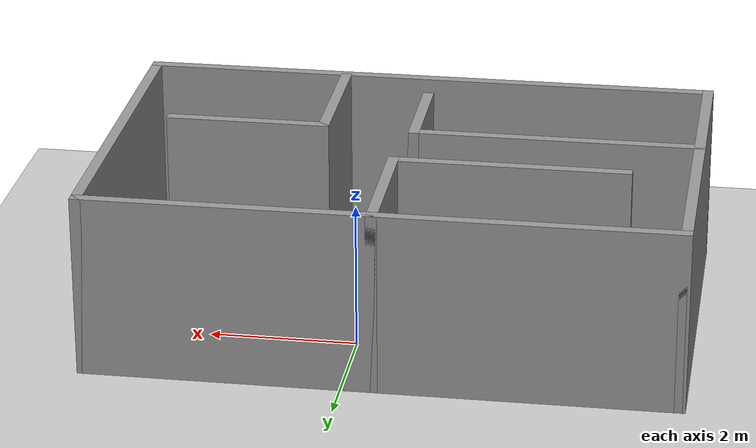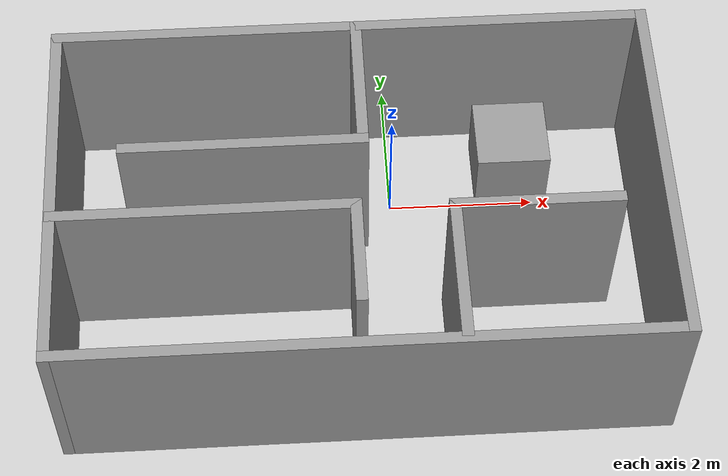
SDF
<sdf version="1.7">
 <world name="default">
  <light name="sun" type="directional">
   <pose>0 0 10 0 -0 0</pose>
   <diffuse>0.8 0.8 0.8 1</diffuse>
   <specular>0.2 0.2 0.2 1</specular>
   <attenuation>
    <range>1000</range>
    <constant>0.9</constant>
    <linear>0.01</linear>
    <quadratic>0.001</quadratic>
   </attenuation>
   <direction>-0.5 0.1 -0.9</direction>
   <spot><inner_angle>0</inner_angle><outer_angle>0</outer_angle><falloff>0</falloff></spot>
  </light>
  <model name="ground_plane">
   <static>1</static>
   <link name="link">
    <collision name="collision">
     <geometry><plane><normal>0 0 1</normal><size>100 100</size></plane></geometry>
     <surface><friction><ode><mu>100</mu><mu2>50</mu2></ode></friction></surface>
    </collision>
    <visual name="visual">
     <cast_shadows>0</cast_shadows>
     <geometry><plane><normal>0 0 1</normal><size>100 100</size></plane></geometry>
     <material>
      <script><uri>file://media/materials/scripts/gazebo.material</uri><name>Gazebo/Grey</name></script>
     </material>
    </visual>
   </link>
  </model>
  <gravity>0 0 -9.8</gravity>
  <magnetic_field>6e-06 2.3e-05 -4.2e-05</magnetic_field>
  <atmosphere type="adiabatic"/>
  <physics type="ode">
   <max_step_size>0.001</max_step_size>
   <real_time_factor>1</real_time_factor>
   <real_time_update_rate>1000</real_time_update_rate>
  </physics>
  <scene><ambient>0.4 0.4 0.4 1</ambient><background>0.7 0.7 0.7 1</background><shadows>1</shadows></scene>
  <spherical_coordinates>
   <surface_model>EARTH_WGS84</surface_model>
   <latitude_deg>0</latitude_deg>
   <longitude_deg>0</longitude_deg>
   <elevation>0</elevation>
   <heading_deg>0</heading_deg>
  </spherical_coordinates>
  <model name="room">
   <pose>-0.491127 0.063659 0 0 -0 0</pose>
   <link name="Wall_0">
    <collision name="Wall_0_Collision">
     <geometry><box><size>8 0.15 2.5</size></box></geometry>
     <pose>0 0 1.25 0 -0 0</pose>
    </collision>
    <visual name="Wall_0_Visual">
     <pose>0 0 1.25 0 -0 0</pose>
     <geometry><box><size>8 0.15 2.5</size></box></geometry>
     <material>
      <script><uri>file://media/materials/scripts/gazebo.material</uri><name>Gazebo/Grey</name></script>
      <ambient>1 1 1 1</ambient>
     </material>
     <meta><layer>0</layer></meta>
    </visual>
    <pose>-0 1.2525 0 0 -0 0</pose>
   </link>
   <link name="Wall_1">
    <collision name="Wall_1_Collision">
     <geometry><box><size>5 0.15 2.5</size></box></geometry>
     <pose>0 0 1.25 0 -0 0</pose>
    </collision>
    <visual name="Wall_1_Visual">
     <pose>0 0 1.25 0 -0 0</pose>
     <geometry><box><size>5 0.15 2.5</size></box></geometry>
     <material>
      <script><uri>file://media/materials/scripts/gazebo.material</uri><name>Gazebo/Grey</name></script>
      <ambient>1 1 1 1</ambient>
     </material>
     <meta><layer>0</layer></meta>
    </visual>
    <pose>3.925 -1.1725 0 0 -0 -1.5708</pose>
   </link>
   <link name="Wall_10">
    <collision name="Wall_10_Collision">
     <geometry><box><size>4 0.15 2.5</size></box></geometry>
     <pose>0 0 1.25 0 -0 0</pose>
    </collision>
    <visual name="Wall_10_Visual">
     <pose>0 0 1.25 0 -0 0</pose>
     <geometry><box><size>4 0.15 2.5</size></box></geometry>
     <material>
      <script><uri>file://media/materials/scripts/gazebo.material</uri><name>Gazebo/Grey</name></script>
      <ambient>1 1 1 1</ambient>
     </material>
     <meta><layer>0</layer></meta>
    </visual>
    <pose>-1.99 -1.5975 0 0 -0 0</pose>
   </link>
   <link name="Wall_11">
    <collision name="Wall_11_Collision">
     <geometry><box><size>1.5 0.15 2.5</size></box></geometry>
     <pose>0 0 1.25 0 -0 0</pose>
    </collision>
    <visual name="Wall_11_Visual">
     <pose>0 0 1.25 0 -0 0</pose>
     <geometry><box><size>1.5 0.15 2.5</size></box></geometry>
     <material>
      <script><uri>file://media/materials/scripts/gazebo.material</uri><name>Gazebo/Grey</name></script>
      <ambient>1 1 1 1</ambient>
     </material>
     <meta><layer>0</layer></meta>
    </visual>
    <pose>-0.065 -2.2725 0 0 -0 -1.5708</pose>
   </link>
   <link name="Wall_13">
    <collision name="Wall_13_Collision">
     <geometry><box><size>2 0.15 2.5</size></box></geometry>
     <pose>0 0 1.25 0 -0 0</pose>
    </collision>
    <visual name="Wall_13_Visual">
     <pose>0 0 1.25 0 -0 0</pose>
     <geometry><box><size>2 0.15 2.5</size></box></geometry>
     <material>
      <script><uri>file://media/materials/scripts/gazebo.material</uri><name>Gazebo/Grey</name></script>
      <ambient>1 1 1 1</ambient>
     </material>
     <meta><layer>0</layer></meta>
    </visual>
    <pose>1.185 -2.5925 0 0 -0 1.5708</pose>
   </link>
   <link name="Wall_14">
    <collision name="Wall_14_Collision">
     <geometry><box><size>2.25 0.15 2.5</size></box></geometry>
     <pose>0 0 1.25 0 -0 0</pose>
    </collision>
    <visual name="Wall_14_Visual">
     <pose>0 0 1.25 0 -0 0</pose>
     <geometry><box><size>2.25 0.15 2.5</size></box></geometry>
     <material>
      <script><uri>file://media/materials/scripts/gazebo.material</uri><name>Gazebo/Grey</name></script>
      <ambient>1 1 1 1</ambient>
     </material>
     <meta><layer>0</layer></meta>
    </visual>
    <pose>2.235 -1.6675 0 0 -0 0</pose>
   </link>
   <link name="Wall_2">
    <collision name="Wall_2_Collision">
     <geometry><box><size>8 0.15 2.5</size></box></geometry>
     <pose>0 0 1.25 0 -0 0</pose>
    </collision>
    <visual name="Wall_2_Visual">
     <pose>0 0 1.25 0 -0 0</pose>
     <geometry><box><size>8 0.15 2.5</size></box></geometry>
     <material>
      <script><uri>file://media/materials/scripts/gazebo.material</uri><name>Gazebo/Grey</name></script>
      <ambient>1 1 1 1</ambient>
     </material>
     <meta><layer>0</layer></meta>
    </visual>
    <pose>-0 -3.5975 0 0 -0 3.14159</pose>
   </link>
   <link name="Wall_3">
    <collision name="Wall_3_Collision">
     <geometry><box><size>5 0.15 2.5</size></box></geometry>
     <pose>0 0 1.25 0 -0 0</pose>
    </collision>
    <visual name="Wall_3_Visual">
     <pose>0 0 1.25 0 -0 0</pose>
     <geometry><box><size>5 0.15 2.5</size></box></geometry>
     <material>
      <script><uri>file://media/materials/scripts/gazebo.material</uri><name>Gazebo/Grey</name></script>
      <ambient>1 1 1 1</ambient>
     </material>
     <meta><layer>0</layer></meta>
    </visual>
    <pose>-3.925 -1.1725 0 0 -0 1.5708</pose>
   </link>
   <link name="Wall_7">
    <collision name="Wall_7_Collision">
     <geometry><box><size>2 0.15 2.5</size></box></geometry>
     <pose>0 0 1.25 0 -0 0</pose>
    </collision>
    <visual name="Wall_7_Visual">
     <pose>0 0 1.25 0 -0 0</pose>
     <geometry><box><size>2 0.15 2.5</size></box></geometry>
     <material>
      <script><uri>file://media/materials/scripts/gazebo.material</uri><name>Gazebo/Grey</name></script>
      <ambient>1 1 1 1</ambient>
     </material>
     <meta><layer>0</layer></meta>
    </visual>
    <pose>0.075 0.3275 0 0 -0 -1.5708</pose>
   </link>
   <link name="Wall_8">
    <collision name="Wall_8_Collision">
     <geometry><box><size>3.25 0.15 2.5</size></box></geometry>
     <pose>0 0 1.25 0 -0 0</pose>
    </collision>
    <visual name="Wall_8_Visual">
     <pose>0 0 1.25 0 -0 0</pose>
     <geometry><box><size>3.25 0.15 2.5</size></box></geometry>
     <material>
      <script><uri>file://media/materials/scripts/gazebo.material</uri><name>Gazebo/Grey</name></script>
      <ambient>1 1 1 1</ambient>
     </material>
     <meta><layer>0</layer></meta>
    </visual>
    <pose>-1.475 -0.5975 0 0 -0 3.14159</pose>
   </link>
   <static>1</static>
  </model>
  <model name="unit_box">
   <pose>1.70356 0.521026 0.499995 1e-05 -0 -7e-06</pose>
   <link name="link">
    <inertial>
     <mass>1</mass>
     <inertia>
      <ixx>0.166667</ixx>
      <ixy>0</ixy>
      <ixz>0</ixz>
      <iyy>0.166667</iyy>
      <iyz>0</iyz>
      <izz>0.166667</izz>
     </inertia>
    </inertial>
    <collision name="collision"><geometry><box><size>1 1 1</size></box></geometry></collision>
    <visual name="visual">
     <geometry><box><size>1 1 1</size></box></geometry>
     <material>
      <script><name>Gazebo/Grey</name><uri>file://media/materials/scripts/gazebo.material</uri></script>
     </material>
    </visual>
   </link>
  </model>
 </world>
</sdf>
